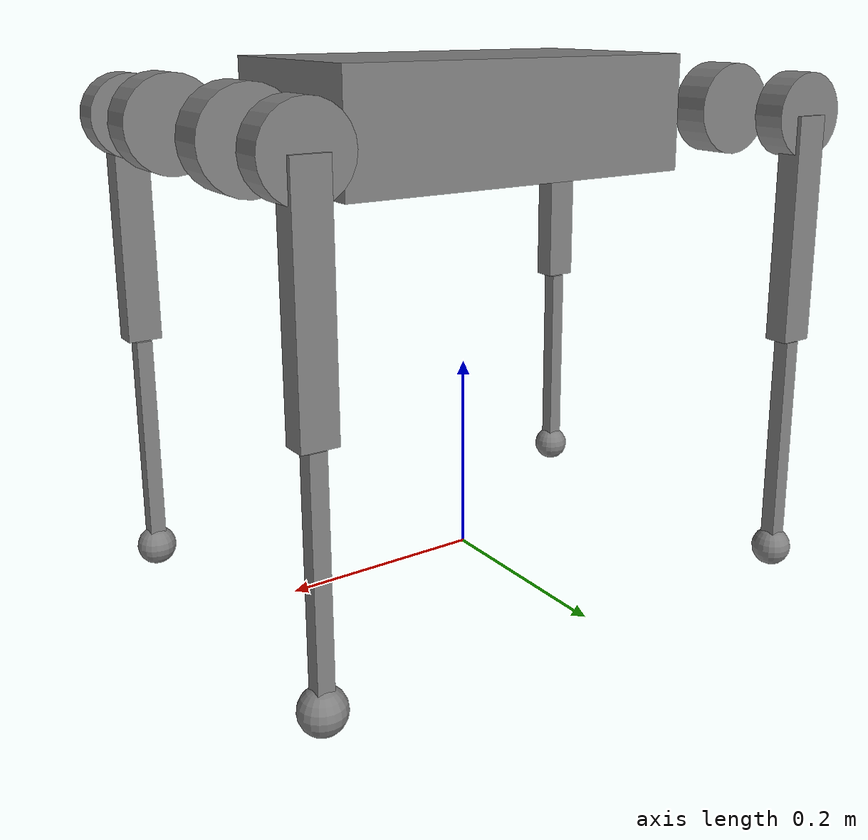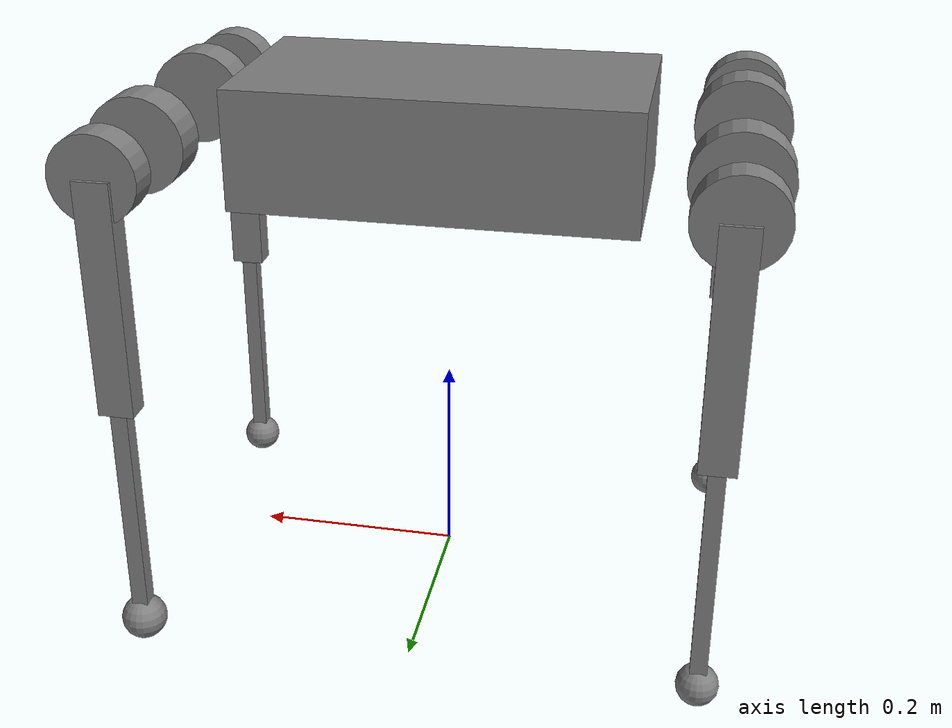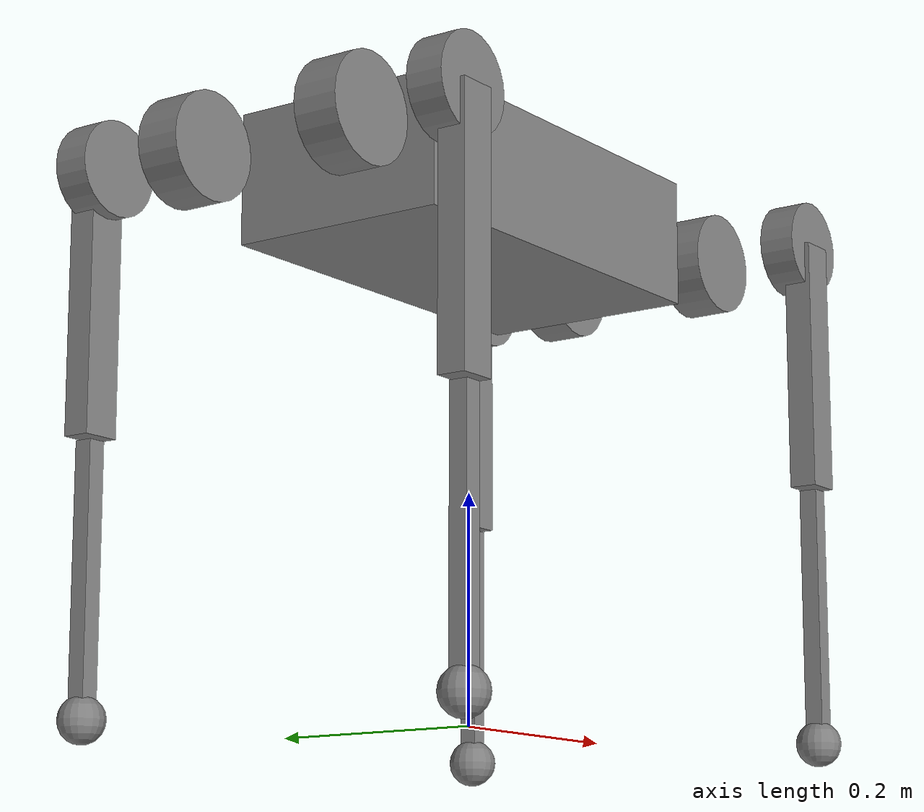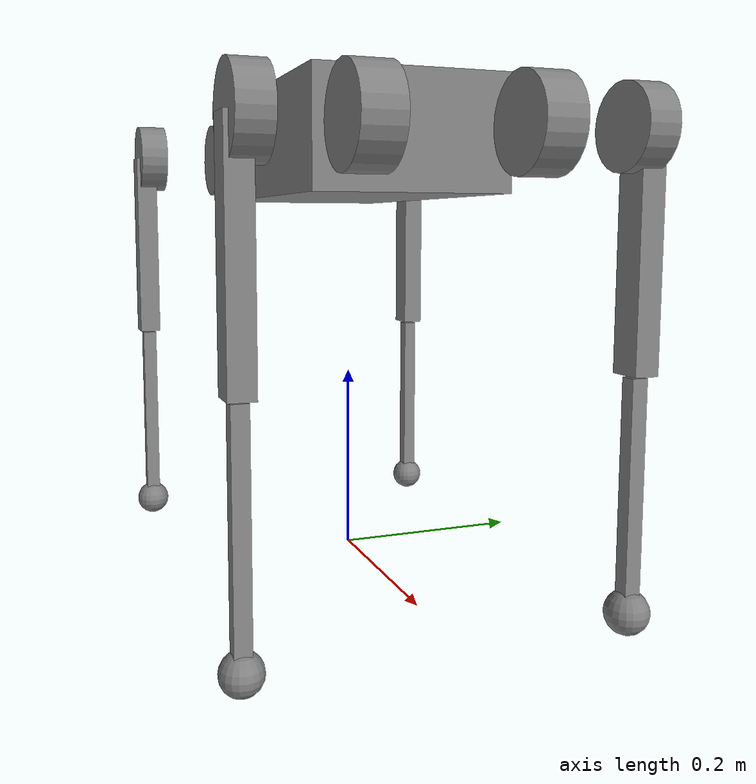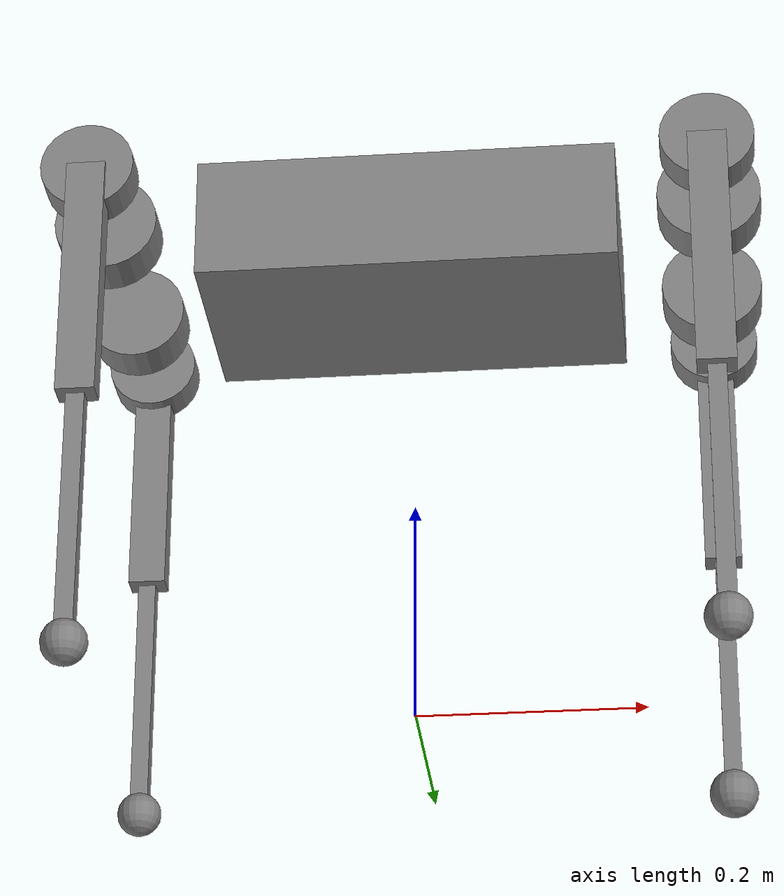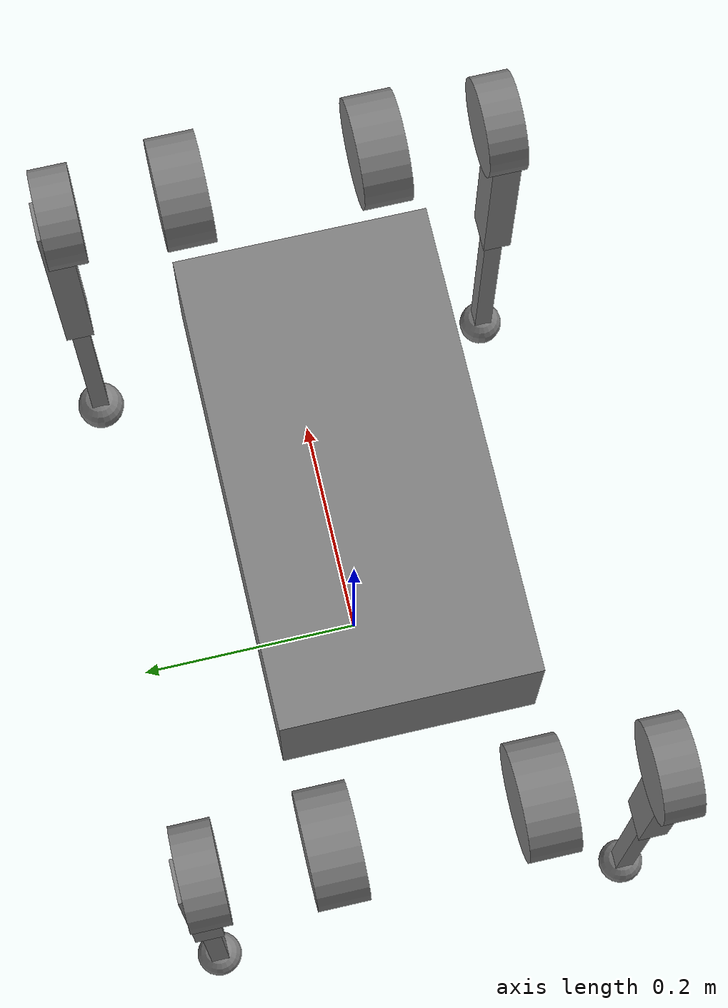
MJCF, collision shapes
<?xml version="1.0" ?>
<mujoco model="jamal">
  <compiler angle="radian" meshdir="assets" autolimits="true"/>
  <option cone="elliptic" impratio="100"/>
  <default>
    <default class="jamal">
      <geom friction="0.4" margin="0.001" condim="1"/>
      <joint damping="0.1" armature="0.01" frictionloss="0.2"/>
      <motor ctrlrange="-33.5 33.5"/>
      <default class="visual">
        <geom type="mesh" contype="0" conaffinity="0" group="2"/>
      </default>
      <default class="collision">
        <geom group="3"/>
        <default class="foot">
          <geom priority="1" condim="6" friction="0.4 0.02 0.01"/>
        </default>
      </default>
    </default>
  </default>
  <asset>
    <material name="metal" rgba=".9 .95 .95 1"/>
    <material name="black" rgba="0 0 0 1"/>
    <material name="white" rgba="1 1 1 1"/>
    <material name="gray" rgba="0.671705 0.692426 0.774270 1"/>
    <mesh name="base" file="base.obj"/>
    <mesh name="hip" file="hip.obj"/>
    <mesh name="thigh" file="thigh.obj"/>
    <mesh name="thigh_mirror" file="thigh_mirror.obj"/>
    <mesh name="calf" file="calf.obj"/>
    <mesh name="calf_mirror" file="calf_mirror.obj"/>
    <mesh name="foot" file="foot.obj"/>
  </asset>
  <worldbody>
    <body name="base_link" pos="0 0 0.45" childclass="jamal">
      <inertial pos="0 0 0" mass="6.0" diaginertia="0.08 0.08 0.03"/>
      <freejoint/>
      <geom mesh="base" material="white" quat="0.7071068 -0.7071068 0 0" class="visual"/>
      <geom size="0.1881 0.1 0.057" type="box" class="collision"/>
      <site name="imu" pos="0 0 0.05"/>
      <body name="FR_hip" pos="0.2699 -0.08028 0">
        <inertial pos="0 0 0" quat="0.70383 0.0163448 0.00756745 0.71014" mass="0.933763" diaginertia="0.00106518 0.000832289 0.000803606"/>
        <joint name="FR_hip_joint" pos="0 0 0" axis="1 0 0" range="-0.802851 0.802851" actuatorfrcrange="-33.5 33.5"/>
        <geom size="0.046 0.02" quat="0.707107 0.707107 0 0" type="cylinder" class="collision"/>
        <body name="FR_thigh" pos="0 -0.10755 0">
          <inertial pos="0 0 0" quat="0.707752 0.00920427 0.0238351 0.705998" mass="1.32134" diaginertia="0.00316175 0.0026319 0.0012157"/>
          <joint name="FR_thigh_joint" pos="0 0 0" axis="0 1 0" range="-1.0472 4.18879" actuatorfrcrange="-33.5 33.5"/>
          <geom size="0.1125 0.01225 0.017" pos="0 0 -0.1125" quat="0.707107 0 0.707107 0" type="box" class="collision"/>
          <geom size="0.041 0.016" pos="0 0.008 0" quat="0.707107 0.707107 0 0" type="cylinder" class="collision"/>
          <body name="FR_calf" pos="0 0 -0.225">
            <inertial pos="0 0 -0.0730961" quat="0.706884 -0.0103183 -0.0103154 0.707179" mass="0.188793" diaginertia="0.0026379 0.00261976 2.81576e-05"/>
            <joint name="FR_calf_joint" pos="0 0 0" axis="0 1 0" range="-2.69653 -0.916298" actuatorfrcrange="-33.5 33.5"/>
            <geom size="0.115 0.008 0.008" pos="0 0 -0.1175" quat="0.707107 0 0.707107 0" type="box" class="collision"/>
            <geom size="0.02" pos="0 0 -0.23" class="foot" name="FR"/>
            <geom mesh="calf_mirror" material="gray" quat="0.7071068 -0.7071068 0 0" class="visual"/>
            <geom mesh="foot" material="black" quat="0.7071068 -0.7071068 0 0" class="visual" pos="0 0 -0.23"/>
          </body>
          <geom mesh="thigh_mirror" material="gray" quat="0.7071068 -0.7071068 0 0" class="visual"/>
        </body>
        <geom mesh="hip" material="metal" quat="0.7071068 -0.7071068 0 0" class="visual"/>
      </body>
      <body name="FL_hip" pos="0.2699 0.08028 0">
        <inertial pos="0 0 0" quat="0.71014 0.00756745 0.0163448 0.70383" mass="0.933763" diaginertia="0.00106518 0.000832289 0.000803606"/>
        <joint name="FL_hip_joint" pos="0 0 0" axis="1 0 0" range="-0.802851 0.802851" actuatorfrcrange="-33.5 33.5"/>
        <geom size="0.046 0.02" quat="0.707107 0.707107 0 0" type="cylinder" class="collision"/>
        <body name="FL_thigh" pos="0 0.10755 0">
          <inertial pos="0 0 0" quat="0.705998 0.0238351 0.00920427 0.707752" mass="1.32134" diaginertia="0.00316175 0.0026319 0.0012157"/>
          <joint name="FL_thigh_joint" pos="0 0 0" axis="0 1 0" range="-1.0472 4.18879" actuatorfrcrange="-33.5 33.5"/>
          <geom size="0.1125 0.01225 0.017" pos="0 0 -0.1125" quat="0.707107 0 0.707107 0" type="box" class="collision"/>
          <geom size="0.041 0.016" pos="0 -0.008 0" quat="0.707107 0.707107 0 0" type="cylinder" class="collision"/>
          <body name="FL_calf" pos="0 0 -0.225">
            <inertial pos="0 0 -0.0730961" quat="0.706884 -0.0103183 -0.0103154 0.707179" mass="0.188793" diaginertia="0.0026379 0.00261976 2.81576e-05"/>
            <joint name="FL_calf_joint" pos="0 0 0" axis="0 1 0" range="-2.69653 -0.916298" actuatorfrcrange="-33.5 33.5"/>
            <geom size="0.115 0.008 0.008" pos="0 0 -0.1175" quat="0.707107 0 0.707107 0" type="box" class="collision"/>
            <geom size="0.022" pos="0 0 -0.23" class="foot" name="FL"/>
            <geom mesh="calf" material="gray" quat="0.7071068 -0.7071068 0 0" class="visual"/>
            <geom mesh="foot" material="black" quat="0.7071068 -0.7071068 0 0" class="visual" pos="0 0 -0.23"/>
          </body>
          <geom mesh="thigh" material="gray" quat="0.7071068 -0.7071068 0 0" class="visual"/>
        </body>
        <geom mesh="hip" material="metal" quat="0.7071068 -0.7071068 0 0" class="visual"/>
      </body>
      <body name="RR_hip" pos="-0.2699 -0.08028 0">
        <inertial pos="0 0 0" quat="0.71014 -0.00756745 -0.0163448 0.70383" mass="0.933763" diaginertia="0.00106518 0.000832289 0.000803606"/>
        <joint name="RR_hip_joint" pos="0 0 0" axis="1 0 0" range="-0.802851 0.802851" actuatorfrcrange="-33.5 33.5"/>
        <geom size="0.046 0.02" quat="0.707107 0.707107 0 0" type="cylinder" class="collision"/>
        <body name="RR_thigh" pos="0 -0.10755 0">
          <inertial pos="0 0 0" quat="0.707752 0.00920427 0.0238351 0.705998" mass="1.32134" diaginertia="0.00316175 0.0026319 0.0012157"/>
          <joint name="RR_thigh_joint" pos="0 0 0" axis="0 1 0" range="-1.0472 4.18879" actuatorfrcrange="-33.5 33.5"/>
          <geom size="0.1125 0.01225 0.017" pos="0 0 -0.1125" quat="0.707107 0 0.707107 0" type="box" class="collision"/>
          <geom size="0.041 0.016" pos="0 0.008 0" quat="0.707107 0.707107 0 0" type="cylinder" class="collision"/>
          <body name="RR_calf" pos="0 0 -0.225">
            <inertial pos="0 0 -0.0730961" quat="0.706884 -0.0103183 -0.0103154 0.707179" mass="0.188793" diaginertia="0.0026379 0.00261976 2.81576e-05"/>
            <joint name="RR_calf_joint" pos="0 0 0" axis="0 1 0" range="-2.69653 -0.916298" actuatorfrcrange="-33.5 33.5"/>
            <geom size="0.115 0.008 0.008" pos="0 0 -0.1175" quat="0.707107 0 0.707107 0" type="box" class="collision"/>
            <geom size="0.02" pos="0 0 -0.23" class="foot" name="RR"/>
            <geom mesh="calf_mirror" material="gray" quat="0.7071068 -0.7071068 0 0" class="visual"/>
            <geom mesh="foot" material="black" quat="0.7071068 -0.7071068 0 0" class="visual" pos="0 0 -0.23"/>
          </body>
          <geom mesh="thigh_mirror" material="gray" quat="0.7071068 -0.7071068 0 0" class="visual"/>
        </body>
        <geom mesh="hip" material="metal" quat="0.7071068 -0.7071068 0 0" class="visual"/>
      </body>
      <body name="RL_hip" pos="-0.2699 0.08028 0">
        <inertial pos="0 0 0" quat="0.70383 -0.0163448 -0.00756745 0.71014" mass="0.933763" diaginertia="0.00106518 0.000832289 0.000803606"/>
        <joint name="RL_hip_joint" pos="0 0 0" axis="1 0 0" range="-0.802851 0.802851" actuatorfrcrange="-33.5 33.5"/>
        <geom size="0.046 0.02" quat="0.707107 0.707107 0 0" type="cylinder" class="collision"/>
        <body name="RL_thigh" pos="0 0.10755 0">
          <inertial pos="0 0 0" quat="0.705998 0.0238351 0.00920427 0.707752" mass="1.32134" diaginertia="0.00316175 0.0026319 0.0012157"/>
          <joint name="RL_thigh_joint" pos="0 0 0" axis="0 1 0" range="-1.0472 4.18879" actuatorfrcrange="-33.5 33.5"/>
          <geom size="0.1125 0.01225 0.017" pos="0 0 -0.1125" quat="0.707107 0 0.707107 0" type="box" class="collision"/>
          <geom size="0.041 0.016" pos="0 -0.008 0" quat="0.707107 0.707107 0 0" type="cylinder" class="collision"/>
          <body name="RL_calf" pos="0 0 -0.225">
            <inertial pos="0 0 -0.0730961" quat="0.706884 -0.0103183 -0.0103154 0.707179" mass="0.188793" diaginertia="0.0026379 0.00261976 2.81576e-05"/>
            <joint name="RL_calf_joint" pos="0 0 0" axis="0 1 0" range="-2.69653 -0.916298" actuatorfrcrange="-33.5 33.5"/>
            <geom size="0.115 0.008 0.008" pos="0 0 -0.1175" quat="0.707107 0 0.707107 0" type="box" class="collision"/>
            <geom size="0.02" pos="0 0 -0.23" class="foot" name="RL"/>
            <geom mesh="calf" material="gray" quat="0.7071068 -0.7071068 0 0" class="visual"/>
            <geom mesh="foot" material="black" quat="0.7071068 -0.7071068 0 0" class="visual" pos="0 0 -0.23"/>
          </body>
          <geom mesh="thigh" material="gray" quat="0.7071068 -0.7071068 0 0" class="visual"/>
        </body>
        <geom mesh="hip" material="metal" quat="0.7071068 -0.7071068 0 0" class="visual"/>
      </body>
    </body>
  </worldbody>
  <actuator>
    <motor name="FR_hip" joint="FR_hip_joint" ctrlrange="-33.5 33.5"/>
    <motor name="FR_thigh" joint="FR_thigh_joint" ctrlrange="-33.5 33.5"/>
    <motor name="FR_calf" joint="FR_calf_joint" ctrlrange="-33.5 33.5"/>
    <motor name="FL_hip" joint="FL_hip_joint" ctrlrange="-33.5 33.5"/>
    <motor name="FL_thigh" joint="FL_thigh_joint" ctrlrange="-33.5 33.5"/>
    <motor name="FL_calf" joint="FL_calf_joint" ctrlrange="-33.5 33.5"/>
    <motor name="RR_hip" joint="RR_hip_joint" ctrlrange="-33.5 33.5"/>
    <motor name="RR_thigh" joint="RR_thigh_joint" ctrlrange="-33.5 33.5"/>
    <motor name="RR_calf" joint="RR_calf_joint" ctrlrange="-33.5 33.5"/>
    <motor name="RL_hip" joint="RL_hip_joint" ctrlrange="-33.5 33.5"/>
    <motor name="RL_thigh" joint="RL_thigh_joint" ctrlrange="-33.5 33.5"/>
    <motor name="RL_calf" joint="RL_calf_joint" ctrlrange="-33.5 33.5"/>
  </actuator>
  <sensor>
    <jointpos name="FR_hip_pos" joint="FR_hip_joint"/>
    <jointpos name="FR_thigh_pos" joint="FR_thigh_joint"/>
    <jointpos name="FR_calf_pos" joint="FR_calf_joint"/>
    <jointpos name="FL_hip_pos" joint="FL_hip_joint"/>
    <jointpos name="FL_thigh_pos" joint="FL_thigh_joint"/>
    <jointpos name="FL_calf_pos" joint="FL_calf_joint"/>
    <jointpos name="RR_hip_pos" joint="RR_hip_joint"/>
    <jointpos name="RR_thigh_pos" joint="RR_thigh_joint"/>
    <jointpos name="RR_calf_pos" joint="RR_calf_joint"/>
    <jointpos name="RL_hip_pos" joint="RL_hip_joint"/>
    <jointpos name="RL_thigh_pos" joint="RL_thigh_joint"/>
    <jointpos name="RL_calf_pos" joint="RL_calf_joint"/>
    <jointvel name="FR_hip_vel" joint="FR_hip_joint"/>
    <jointvel name="FR_thigh_vel" joint="FR_thigh_joint"/>
    <jointvel name="FR_calf_vel" joint="FR_calf_joint"/>
    <jointvel name="FL_hip_vel" joint="FL_hip_joint"/>
    <jointvel name="FL_thigh_vel" joint="FL_thigh_joint"/>
    <jointvel name="FL_calf_vel" joint="FL_calf_joint"/>
    <jointvel name="RR_hip_vel" joint="RR_hip_joint"/>
    <jointvel name="RR_thigh_vel" joint="RR_thigh_joint"/>
    <jointvel name="RR_calf_vel" joint="RR_calf_joint"/>
    <jointvel name="RL_hip_vel" joint="RL_hip_joint"/>
    <jointvel name="RL_thigh_vel" joint="RL_thigh_joint"/>
    <jointvel name="RL_calf_vel" joint="RL_calf_joint"/>
    <jointactuatorfrc name="FR_hip_torque" joint="FR_hip_joint" noise="0.01"/>
    <jointactuatorfrc name="FR_thigh_torque" joint="FR_thigh_joint" noise="0.01"/>
    <jointactuatorfrc name="FR_calf_torque" joint="FR_calf_joint" noise="0.01"/>
    <jointactuatorfrc name="FL_hip_torque" joint="FL_hip_joint" noise="0.01"/>
    <jointactuatorfrc name="FL_thigh_torque" joint="FL_thigh_joint" noise="0.01"/>
    <jointactuatorfrc name="FL_calf_torque" joint="FL_calf_joint" noise="0.01"/>
    <jointactuatorfrc name="RR_hip_torque" joint="RR_hip_joint" noise="0.01"/>
    <jointactuatorfrc name="RR_thigh_torque" joint="RR_thigh_joint" noise="0.01"/>
    <jointactuatorfrc name="RR_calf_torque" joint="RR_calf_joint" noise="0.01"/>
    <jointactuatorfrc name="RL_hip_torque" joint="RL_hip_joint" noise="0.01"/>
    <jointactuatorfrc name="RL_thigh_torque" joint="RL_thigh_joint" noise="0.01"/>
    <jointactuatorfrc name="RL_calf_torque" joint="RL_calf_joint" noise="0.01"/>
    <framequat name="imu_quat" objtype="site" objname="imu"/>
    <gyro name="imu_gyro" site="imu"/>
    <accelerometer name="imu_acc" site="imu"/>
    <framepos name="frame_pos" objtype="site" objname="imu"/>
    <framelinvel name="frame_vel" objtype="site" objname="imu"/>
  </sensor>
  <keyframe>
    <key name="home" qpos="0 0 0.45 1 0 0 0 0 1.36 -2.65 0 1.36 -2.65 0 1.36 -2.65 0 1.36 -2.65" ctrl="0 1.36 -2.65 0 1.36 -2.65 0 1.36 -2.65 0 1.36 -2.65"/>
  </keyframe>
</mujoco>
